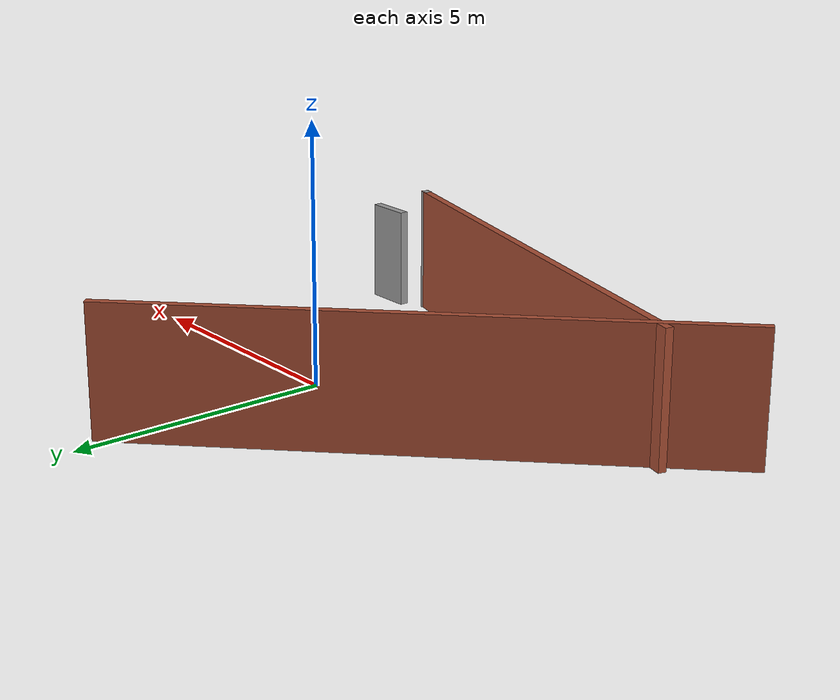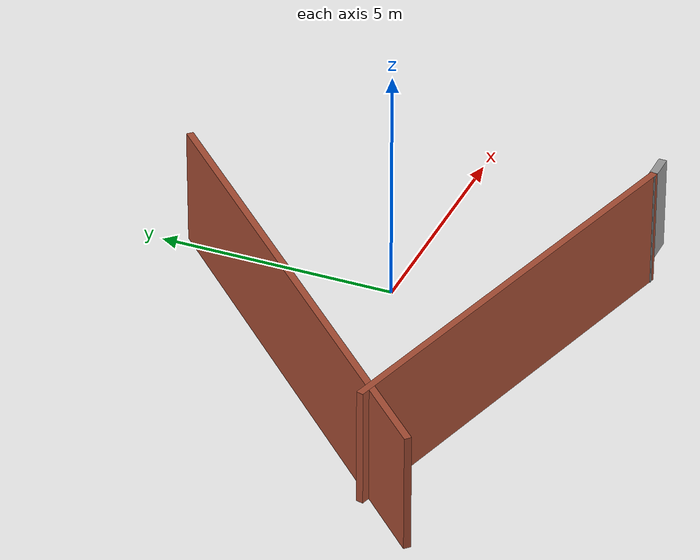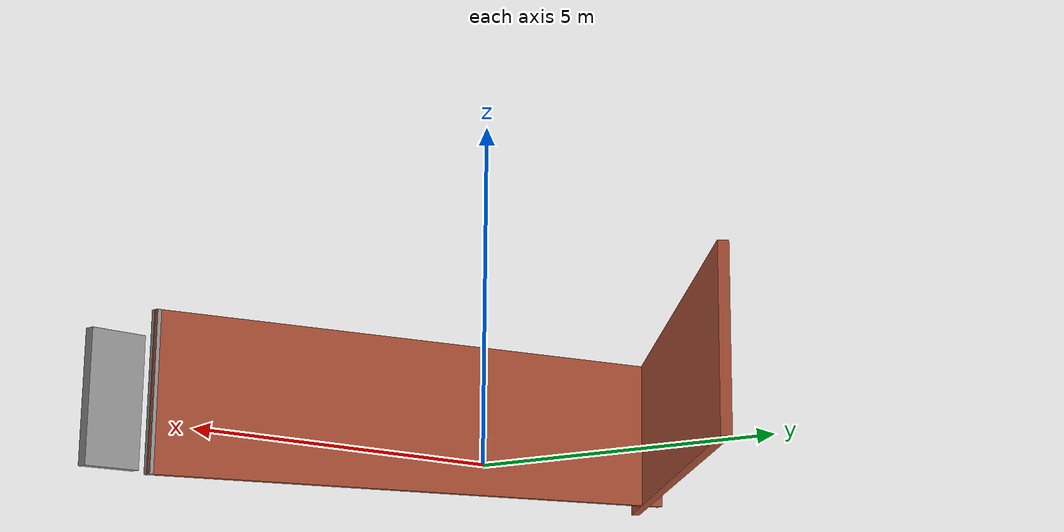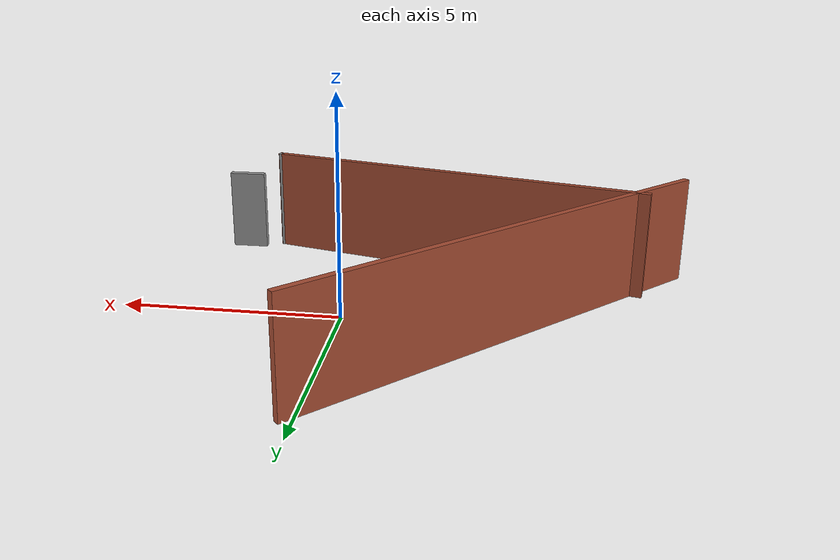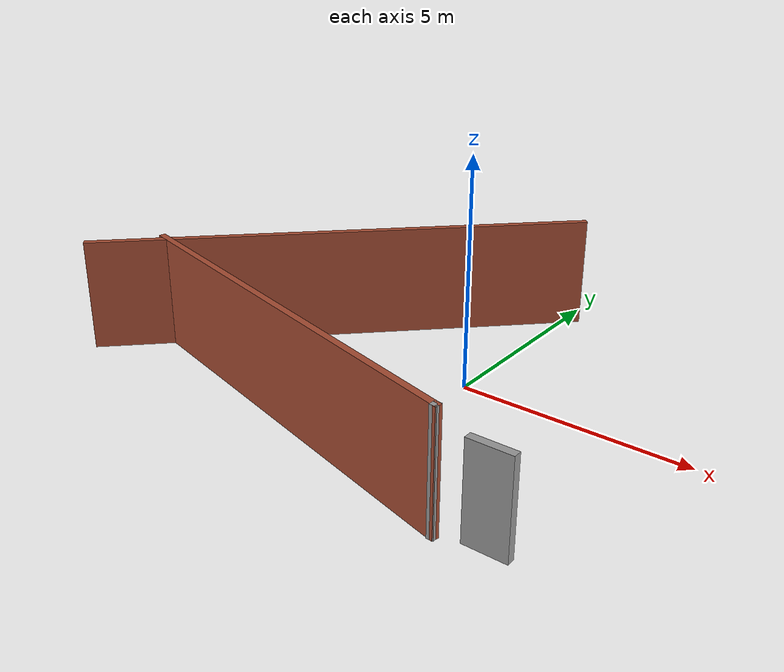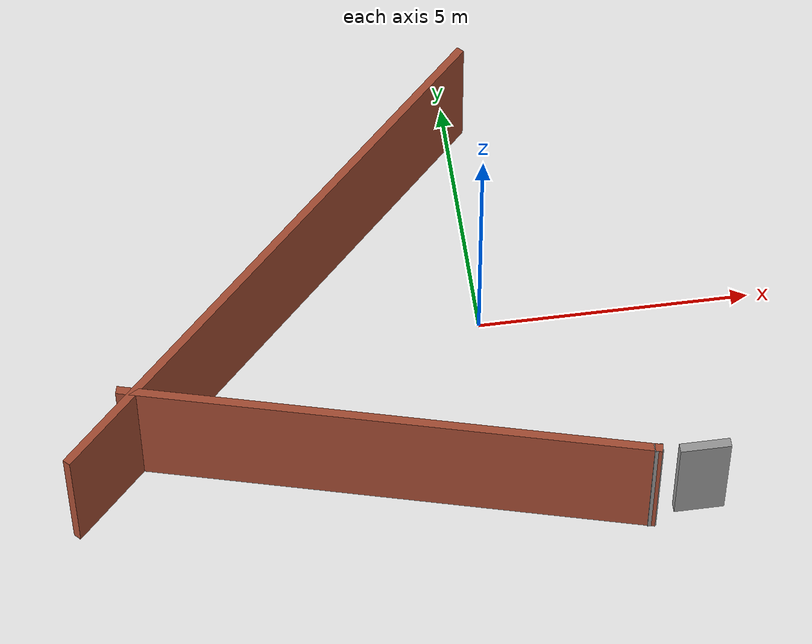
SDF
<?xml version='1.0'?>
<sdf version='1.7'>
  <model name='walls'>
    <pose>-2.61792 -0.060941 0 0 -0 0</pose>
    <link name='Door_0'>
      <collision name='Door_0_Collision'>
        <geometry>
          <box>
            <size>0.9 0.17 2</size>
          </box>
        </geometry>
        <pose>0 0 1 0 -0 0</pose>
      </collision>
      <visual name='Door_0_Visual'>
        <pose>0 0 1 0 -0 0</pose>
        <geometry>
          <box>
            <size>0.9 0.17 2</size>
          </box>
        </geometry>
        <material>
          <script>
            <uri>file://media/materials/scripts/gazebo.material</uri>
            <name>Gazebo/Grey</name>
          </script>
        </material>
      </visual>
      <pose>5.91353 -4.25414 0 0 -0 0</pose>
    </link>
    <link name='Wall_0'>
      <collision name='Wall_0_Collision'>
        <geometry>
          <box>
            <size>9.5 0.15 2.5</size>
          </box>
        </geometry>
        <pose>0 0 1.25 0 -0 0</pose>
      </collision>
      <visual name='Wall_0_Visual'>
        <pose>0 0 1.25 0 -0 0</pose>
        <geometry>
          <box>
            <size>9.5 0.15 2.5</size>
          </box>
        </geometry>
        <material>
          <script>
            <uri>file://media/materials/scripts/gazebo.material</uri>
            <name>Gazebo/Bricks</name>
          </script>
          <ambient>1 1 1 1</ambient>
        </material>
        <meta>
          <layer>0</layer>
        </meta>
      </visual>
      <pose>0.505683 -3.28609 0 0 -0 -0.261799</pose>
    </link>
    <link name='Wall_1'>
      <collision name='Wall_1_Collision'>
        <geometry>
          <box>
            <size>0.15 0.15 2.5</size>
          </box>
        </geometry>
        <pose>0 0 1.25 0 -0 0</pose>
      </collision>
      <visual name='Wall_1_Visual'>
        <pose>0 0 1.25 0 -0 0</pose>
        <geometry>
          <box>
            <size>0.15 0.15 2.5</size>
          </box>
        </geometry>
        <material>
          <script>
            <uri>file://media/materials/scripts/gazebo.material</uri>
            <name>Gazebo/Grey</name>
          </script>
          <ambient>1 1 1 1</ambient>
        </material>
        <meta>
          <layer>0</layer>
        </meta>
      </visual>
      <pose>5.02139 -4.49607 0 0 -0 0</pose>
    </link>
    <link name='Wall_5'>
      <collision name='Wall_5_Collision'>
        <geometry>
          <box>
            <size>11.25 0.15 2.5</size>
          </box>
        </geometry>
        <pose>0 0 1.25 0 -0 0</pose>
      </collision>
      <visual name='Wall_5_Visual'>
        <pose>0 0 1.25 0 -0 0</pose>
        <geometry>
          <box>
            <size>11.25 0.15 2.5</size>
          </box>
        </geometry>
        <material>
          <script>
            <uri>file://media/materials/scripts/gazebo.material</uri>
            <name>Gazebo/Bricks</name>
          </script>
          <ambient>1 1 1 1</ambient>
        </material>
        <meta>
          <layer>0</layer>
        </meta>
      </visual>
      <pose>-1.08273 0.557416 0 0 -0 0.785398</pose>
    </link>
    <static>1</static>
  </model>
</sdf>
